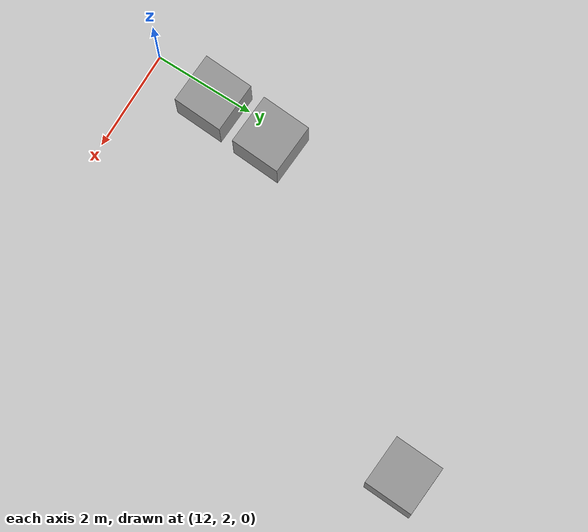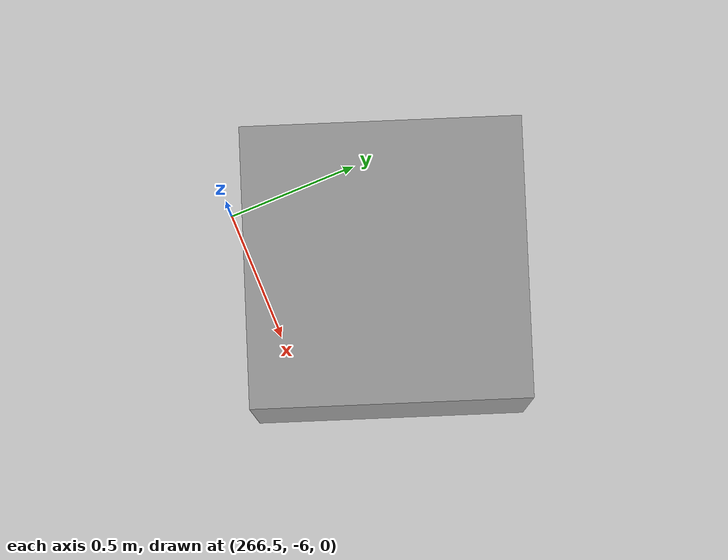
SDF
<sdf version="1.6">
 <world name="default">
  <light name="sun" type="directional">
   <cast_shadows>0</cast_shadows>
   <pose>0 0 10 0 -0 0</pose>
   <diffuse>0.8 0.8 0.8 1</diffuse>
   <specular>0.1 0.1 0.1 1</specular>
   <attenuation>
    <range>1000</range>
    <constant>0.9</constant>
    <linear>0.01</linear>
    <quadratic>0.001</quadratic>
   </attenuation>
   <direction>-0.5 0.5 -1</direction>
  </light>
  <gravity>0 0 -9.8</gravity>
  <magnetic_field>6e-06 2.3e-05 -4.2e-05</magnetic_field>
  <atmosphere type="adiabatic"/>
  <physics name="default_physics" default="0" type="ode">
   <max_step_size>0.001</max_step_size>
   <real_time_factor>1</real_time_factor>
   <real_time_update_rate>1000</real_time_update_rate>
  </physics>
  <scene><ambient>0.4 0.4 0.4 1</ambient><background>0.7 0.7 0.7 1</background><shadows>1</shadows></scene>
  <spherical_coordinates>
   <surface_model>EARTH_WGS84</surface_model>
   <latitude_deg>0</latitude_deg>
   <longitude_deg>0</longitude_deg>
   <elevation>0</elevation>
   <heading_deg>0</heading_deg>
  </spherical_coordinates>
  <model name="unit_box_clone">
   <pose>12.3336 4.6871 0.499995 5e-06 -5e-06 -0.054542</pose>
   <link name="link">
    <inertial>
     <mass>1</mass>
     <inertia>
      <ixx>0.166667</ixx>
      <ixy>0</ixy>
      <ixz>0</ixz>
      <iyy>0.166667</iyy>
      <iyz>0</iyz>
      <izz>0.166667</izz>
     </inertia>
    </inertial>
    <collision name="collision"><geometry><box><size>1 1 1</size></box></geometry></collision>
    <visual name="visual">
     <geometry><box><size>1 1 1</size></box></geometry>
     <material>
      <script><name>Gazebo/Grey</name><uri>file://media/materials/scripts/gazebo.material</uri></script>
     </material>
    </visual>
   </link>
  </model>
  <model name="unit_box_clone_clone">
   <pose>12.2402 3.37998 0.499995 5e-06 5e-06 -0.047863</pose>
   <link name="link">
    <inertial>
     <mass>1</mass>
     <inertia>
      <ixx>0.166667</ixx>
      <ixy>0</ixy>
      <ixz>0</ixz>
      <iyy>0.166667</iyy>
      <iyz>0</iyz>
      <izz>0.166667</izz>
     </inertia>
    </inertial>
    <collision name="collision"><geometry><box><size>1 1 1</size></box></geometry></collision>
    <visual name="visual">
     <geometry><box><size>1 1 1</size></box></geometry>
     <material>
      <script><name>Gazebo/Grey</name><uri>file://media/materials/scripts/gazebo.material</uri></script>
     </material>
    </visual>
   </link>
  </model>
  <model name="unit_box_clone_clone_1">
   <pose>266.973 -5.55941 0.499995 1.57079 -1.57079 -1.91934</pose>
   <link name="link">
    <inertial>
     <mass>1</mass>
     <inertia>
      <ixx>0.166667</ixx>
      <ixy>0</ixy>
      <ixz>0</ixz>
      <iyy>0.166667</iyy>
      <iyz>0</iyz>
      <izz>0.166667</izz>
     </inertia>
    </inertial>
    <collision name="collision"><geometry><box><size>1 1 1</size></box></geometry></collision>
    <visual name="visual">
     <geometry><box><size>1 1 1</size></box></geometry>
     <material>
      <script><name>Gazebo/Grey</name><uri>file://media/materials/scripts/gazebo.material</uri></script>
     </material>
    </visual>
   </link>
  </model>
  <model name="unit_box_clone_clone_clone">
   <pose>16.6473 -7.75903 0.5 0 0 -0.047826</pose>
   <link name="link">
    <inertial>
     <mass>1</mass>
     <inertia>
      <ixx>0.166667</ixx>
      <ixy>0</ixy>
      <ixz>0</ixz>
      <iyy>0.166667</iyy>
      <iyz>0</iyz>
      <izz>0.166667</izz>
     </inertia>
    </inertial>
    <collision name="collision"><geometry><box><size>1 1 1</size></box></geometry></collision>
    <visual name="visual">
     <geometry><box><size>1 1 1</size></box></geometry>
     <material>
      <script><name>Gazebo/Grey</name><uri>file://media/materials/scripts/gazebo.material</uri></script>
     </material>
    </visual>
   </link>
  </model>
  <model name="unit_box_clone_clone_clone_clone">
   <pose>16.3124 10.0318 0.5 0 -0 -0.047851</pose>
   <link name="link">
    <inertial>
     <mass>1</mass>
     <inertia>
      <ixx>0.166667</ixx>
      <ixy>0</ixy>
      <ixz>0</ixz>
      <iyy>0.166667</iyy>
      <iyz>0</iyz>
      <izz>0.166667</izz>
     </inertia>
    </inertial>
    <collision name="collision"><geometry><box><size>1 1 1</size></box></geometry></collision>
    <visual name="visual">
     <geometry><box><size>1 1 1</size></box></geometry>
     <material>
      <script><name>Gazebo/Grey</name><uri>file://media/materials/scripts/gazebo.material</uri></script>
     </material>
    </visual>
   </link>
  </model>
  <model name="ground_plane">
   <static>1</static>
   <link name="link">
    <collision name="collision">
     <geometry><plane><normal>0 0 1</normal><size>100 100</size></plane></geometry>
     <surface>
      <contact><collide_bitmask>65535</collide_bitmask></contact>
      <friction><ode><mu>100</mu><mu2>50</mu2></ode></friction>
     </surface>
    </collision>
    <visual name="visual">
     <cast_shadows>0</cast_shadows>
     <geometry><plane><normal>0 0 1</normal><size>100 100</size></plane></geometry>
     <material>
      <script><uri>file://media/materials/scripts/gazebo.material</uri><name>Gazebo/Grey</name></script>
     </material>
    </visual>
   </link>
   <pose>7.75422 -60.2153 0 0 -0 0</pose>
  </model>
 </world>
</sdf>
